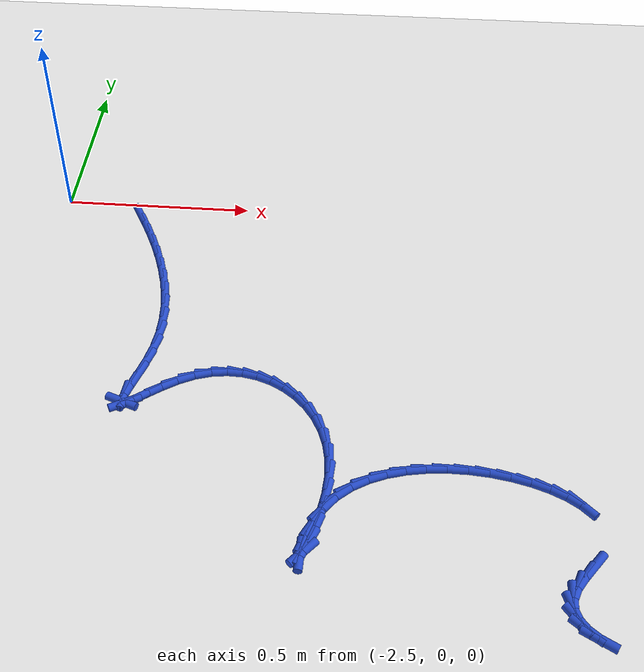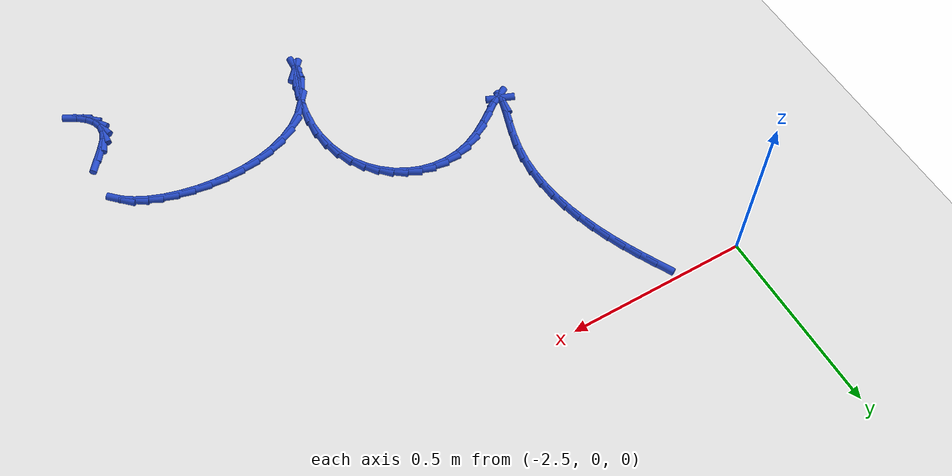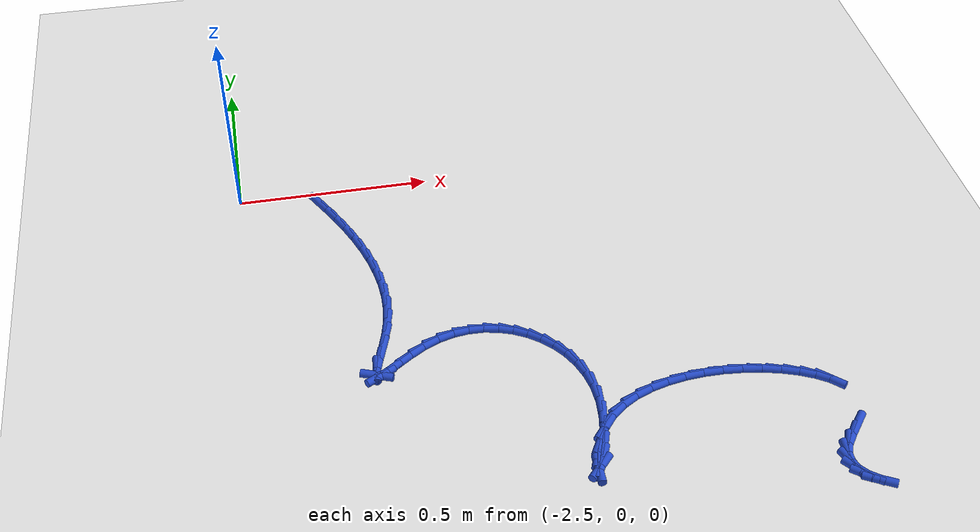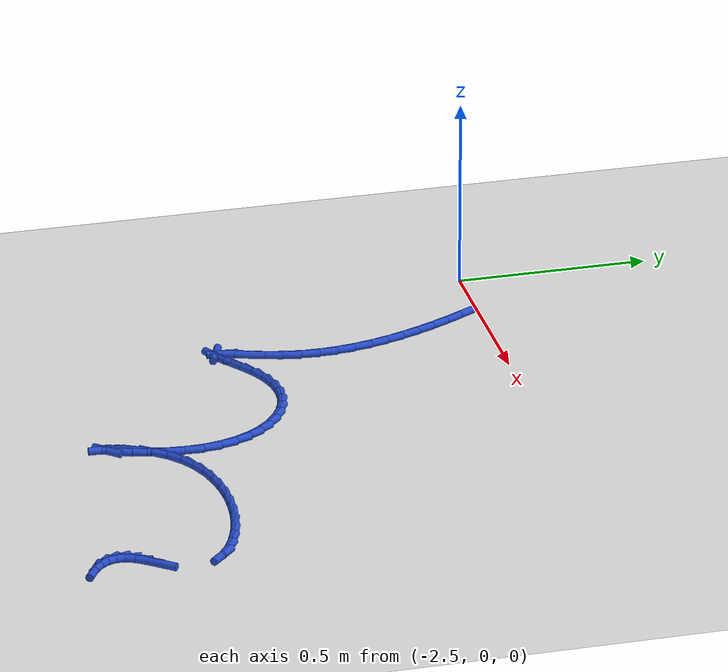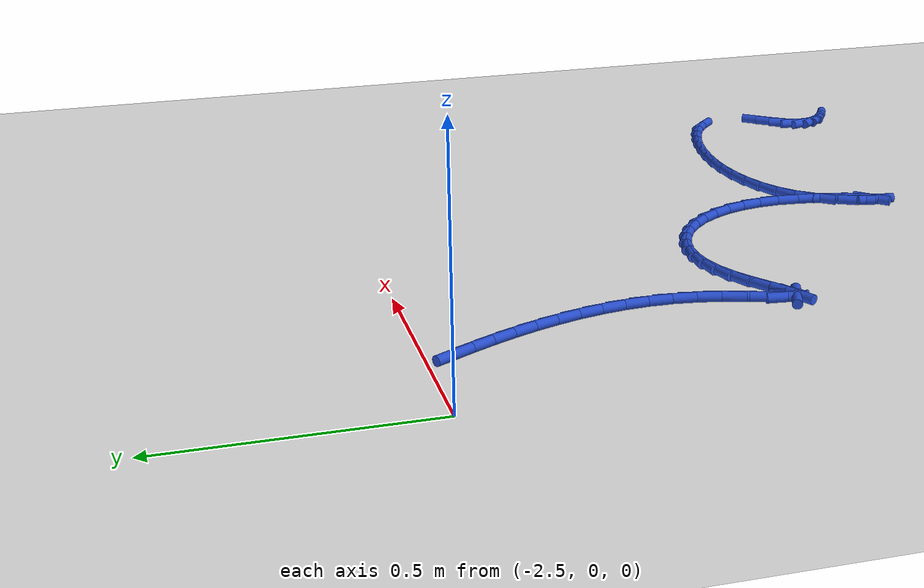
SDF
<sdf version="1.6">
 <world name="default">
  <model name="ground_plane">
   <static>1</static>
   <link name="link">
    <collision name="collision">
     <geometry><plane><normal>0 0 1</normal><size>100 100</size></plane></geometry>
     <surface><friction><ode><mu>100</mu><mu2>50</mu2></ode></friction></surface>
    </collision>
    <visual name="visual">
     <cast_shadows>0</cast_shadows>
     <geometry><plane><normal>0 0 1</normal><size>100 100</size></plane></geometry>
     <material>
      <script><uri>file://media/materials/scripts/gazebo.material</uri><name>Gazebo/WhiteGlow</name></script>
     </material>
    </visual>
   </link>
  </model>
  <model name="line">
   <link name="link_134">
    <pose>-2.2917231130700255 -0.04855741397646514 0.01 0 1.57 -1.0851510295384097</pose>
    <collision name="collision">
     <geometry><cylinder><radius>0.01</radius><length>0.08</length></cylinder></geometry>
    </collision>
    <visual name="visual">
     <material>
      <script><name>Gazebo/Blue</name><uri>file://media/materials/scripts/gazebo.material</uri></script>
     </material>
     <geometry><cylinder><radius>0.01</radius><length>0.08</length></cylinder></geometry>
    </visual>
   </link>
   <link name="link_135">
    <pose>-2.270010300967143 -0.08969516655271938 0.01 0 1.57 -1.1145237822553498</pose>
    <collision name="collision">
     <geometry><cylinder><radius>0.01</radius><length>0.08</length></cylinder></geometry>
    </collision>
    <visual name="visual">
     <material>
      <script><name>Gazebo/Blue</name><uri>file://media/materials/scripts/gazebo.material</uri></script>
     </material>
     <geometry><cylinder><radius>0.01</radius><length>0.08</length></cylinder></geometry>
    </visual>
   </link>
   <link name="link_136">
    <pose>-2.2492708828081667 -0.13195023926017302 0.01 0 1.57 -1.1495945796037097</pose>
    <collision name="collision">
     <geometry><cylinder><radius>0.01</radius><length>0.08</length></cylinder></geometry>
    </collision>
    <visual name="visual">
     <material>
      <script><name>Gazebo/Blue</name><uri>file://media/materials/scripts/gazebo.material</uri></script>
     </material>
     <geometry><cylinder><radius>0.01</radius><length>0.08</length></cylinder></geometry>
    </visual>
   </link>
   <link name="link_137">
    <pose>-2.2298988175978267 -0.1751900346401957 0.01 0 1.57 -1.1907986884473443</pose>
    <collision name="collision">
     <geometry><cylinder><radius>0.01</radius><length>0.08</length></cylinder></geometry>
    </collision>
    <visual name="visual">
     <material>
      <script><name>Gazebo/Blue</name><uri>file://media/materials/scripts/gazebo.material</uri></script>
     </material>
     <geometry><cylinder><radius>0.01</radius><length>0.08</length></cylinder></geometry>
    </visual>
   </link>
   <link name="link_138">
    <pose>-2.2122880643408496 -0.21928195523416177 0.01 0 1.57 -1.2386718678270994</pose>
    <collision name="collision">
     <geometry><cylinder><radius>0.01</radius><length>0.08</length></cylinder></geometry>
    </collision>
    <visual name="visual">
     <material>
      <script><name>Gazebo/Blue</name><uri>file://media/materials/scripts/gazebo.material</uri></script>
     </material>
     <geometry><cylinder><radius>0.01</radius><length>0.08</length></cylinder></geometry>
    </visual>
   </link>
   <link name="link_139">
    <pose>-2.196832582041966 -0.26409340358344024 0.01 0 1.57 -1.2938150297050173</pose>
    <collision name="collision">
     <geometry><cylinder><radius>0.01</radius><length>0.08</length></cylinder></geometry>
    </collision>
    <visual name="visual">
     <material>
      <script><name>Gazebo/Blue</name><uri>file://media/materials/scripts/gazebo.material</uri></script>
     </material>
     <geometry><cylinder><radius>0.01</radius><length>0.08</length></cylinder></geometry>
    </visual>
   </link>
   <link name="link_140">
    <pose>-2.183926329705902 -0.3094917822294041 0.01 0 1.57 -1.3568380491612104</pose>
    <collision name="collision">
     <geometry><cylinder><radius>0.01</radius><length>0.08</length></cylinder></geometry>
    </collision>
    <visual name="visual">
     <material>
      <script><name>Gazebo/Blue</name><uri>file://media/materials/scripts/gazebo.material</uri></script>
     </material>
     <geometry><cylinder><radius>0.01</radius><length>0.08</length></cylinder></geometry>
    </visual>
   </link>
   <link name="link_141">
    <pose>-2.17396326633739 -0.3553444937134266 0.01 0 1.57 -1.4282718271760149</pose>
    <collision name="collision">
     <geometry><cylinder><radius>0.01</radius><length>0.08</length></cylinder></geometry>
    </collision>
    <visual name="visual">
     <material>
      <script><name>Gazebo/Blue</name><uri>file://media/materials/scripts/gazebo.material</uri></script>
     </material>
     <geometry><cylinder><radius>0.01</radius><length>0.08</length></cylinder></geometry>
    </visual>
   </link>
   <link name="link_142">
    <pose>-2.1673373509411564 -0.4015189405768763 0.01 0 1.57 -1.508440158553396</pose>
    <collision name="collision">
     <geometry><cylinder><radius>0.01</radius><length>0.08</length></cylinder></geometry>
    </collision>
    <visual name="visual">
     <material>
      <script><name>Gazebo/Blue</name><uri>file://media/materials/scripts/gazebo.material</uri></script>
     </material>
     <geometry><cylinder><radius>0.01</radius><length>0.08</length></cylinder></geometry>
    </visual>
   </link>
   <link name="link_143">
    <pose>-2.1644425425219307 -0.447882525361128 0.01 0 1.57 1.5442998527689176</pose>
    <collision name="collision">
     <geometry><cylinder><radius>0.01</radius><length>0.08</length></cylinder></geometry>
    </collision>
    <visual name="visual">
     <material>
      <script><name>Gazebo/Blue</name><uri>file://media/materials/scripts/gazebo.material</uri></script>
     </material>
     <geometry><cylinder><radius>0.01</radius><length>0.08</length></cylinder></geometry>
    </visual>
   </link>
   <link name="link_144">
    <pose>-2.165672800084442 -0.4943026506075505 0.01 0 1.57 1.4473704320053755</pose>
    <collision name="collision">
     <geometry><cylinder><radius>0.01</radius><length>0.08</length></cylinder></geometry>
    </collision>
    <visual name="visual">
     <material>
      <script><name>Gazebo/Blue</name><uri>file://media/materials/scripts/gazebo.material</uri></script>
     </material>
     <geometry><cylinder><radius>0.01</radius><length>0.08</length></cylinder></geometry>
    </visual>
   </link>
   <link name="link_145">
    <pose>-2.171422082633418 -0.5406467188575181 0.01 0 1.57 1.349013122720016</pose>
    <collision name="collision">
     <geometry><cylinder><radius>0.01</radius><length>0.08</length></cylinder></geometry>
    </collision>
    <visual name="visual">
     <material>
      <script><name>Gazebo/Blue</name><uri>file://media/materials/scripts/gazebo.material</uri></script>
     </material>
     <geometry><cylinder><radius>0.01</radius><length>0.08</length></cylinder></geometry>
    </visual>
   </link>
   <link name="link_146">
    <pose>-2.18176702638688 -0.5865238176493436 0.01 0 1.57 1.282772311946496</pose>
    <collision name="collision">
     <geometry><cylinder><radius>0.01</radius><length>0.08</length></cylinder></geometry>
    </collision>
    <visual name="visual">
     <material>
      <script><name>Gazebo/Blue</name><uri>file://media/materials/scripts/gazebo.material</uri></script>
     </material>
     <geometry><cylinder><radius>0.01</radius><length>0.08</length></cylinder></geometry>
    </visual>
   </link>
   <link name="link_147">
    <pose>-2.1945706562289664 -0.6297410554564037 0.01 0 1.57 1.2574440509981948</pose>
    <collision name="collision">
     <geometry><cylinder><radius>0.01</radius><length>0.08</length></cylinder></geometry>
    </collision>
    <visual name="visual">
     <material>
      <script><name>Gazebo/Blue</name><uri>file://media/materials/scripts/gazebo.material</uri></script>
     </material>
     <geometry><cylinder><radius>0.01</radius><length>0.08</length></cylinder></geometry>
    </visual>
   </link>
   <link name="link_148">
    <pose>-2.2067531039974404 -0.6673379834559726 0.01 0 1.57 1.2865039683746942</pose>
    <collision name="collision">
     <geometry><cylinder><radius>0.01</radius><length>0.08</length></cylinder></geometry>
    </collision>
    <visual name="visual">
     <material>
      <script><name>Gazebo/Blue</name><uri>file://media/materials/scripts/gazebo.material</uri></script>
     </material>
     <geometry><cylinder><radius>0.01</radius><length>0.08</length></cylinder></geometry>
    </visual>
   </link>
   <link name="link_149">
    <pose>-2.2152310130240718 -0.696351313024739 0.01 0 1.57 1.4743388461153744</pose>
    <collision name="collision">
     <geometry><cylinder><radius>0.01</radius><length>0.08</length></cylinder></geometry>
    </collision>
    <visual name="visual">
     <material>
      <script><name>Gazebo/Blue</name><uri>file://media/materials/scripts/gazebo.material</uri></script>
     </material>
     <geometry><cylinder><radius>0.01</radius><length>0.08</length></cylinder></geometry>
    </visual>
   </link>
   <link name="link_150">
    <pose>-2.2169210266406236 -0.713817755539385 0.01 0 1.57 -0.36827275962958833</pose>
    <collision name="collision">
     <geometry><cylinder><radius>0.01</radius><length>0.08</length></cylinder></geometry>
    </collision>
    <visual name="visual">
     <material>
      <script><name>Gazebo/Blue</name><uri>file://media/materials/scripts/gazebo.material</uri></script>
     </material>
     <geometry><cylinder><radius>0.01</radius><length>0.08</length></cylinder></geometry>
    </visual>
   </link>
   <link name="link_151">
    <pose>-2.208849146815495 -0.7169325115986326 0.01 0 1.57 0.5166902553675131</pose>
    <collision name="collision">
     <geometry><cylinder><radius>0.01</radius><length>0.08</length></cylinder></geometry>
    </collision>
    <visual name="visual">
     <material>
      <script><name>Gazebo/Blue</name><uri>file://media/materials/scripts/gazebo.material</uri></script>
     </material>
     <geometry><cylinder><radius>0.01</radius><length>0.08</length></cylinder></geometry>
    </visual>
   </link>
   <link name="link_152">
    <pose>-2.1905601619269266 -0.7065411610567033 0.01 0 1.57 0.63296798541804</pose>
    <collision name="collision">
     <geometry><cylinder><radius>0.01</radius><length>0.08</length></cylinder></geometry>
    </collision>
    <visual name="visual">
     <material>
      <script><name>Gazebo/Blue</name><uri>file://media/materials/scripts/gazebo.material</uri></script>
     </material>
     <geometry><cylinder><radius>0.01</radius><length>0.08</length></cylinder></geometry>
    </visual>
   </link>
   <link name="link_153">
    <pose>-2.164119613758411 -0.6871425137133256 0.01 0 1.57 0.6322620412582841</pose>
    <collision name="collision">
     <geometry><cylinder><radius>0.01</radius><length>0.08</length></cylinder></geometry>
    </collision>
    <visual name="visual">
     <material>
      <script><name>Gazebo/Blue</name><uri>file://media/materials/scripts/gazebo.material</uri></script>
     </material>
     <geometry><cylinder><radius>0.01</radius><length>0.08</length></cylinder></geometry>
    </visual>
   </link>
   <link name="link_154">
    <pose>-2.1317027961292316 -0.6633944387283728 0.01 0 1.57 0.5743941713552768</pose>
    <collision name="collision">
     <geometry><cylinder><radius>0.01</radius><length>0.08</length></cylinder></geometry>
    </collision>
    <visual name="visual">
     <material>
      <script><name>Gazebo/Blue</name><uri>file://media/materials/scripts/gazebo.material</uri></script>
     </material>
     <geometry><cylinder><radius>0.01</radius><length>0.08</length></cylinder></geometry>
    </visual>
   </link>
   <link name="link_155">
    <pose>-2.095485002858673 -0.6399548052617205 0.01 0 1.57 0.45626950187064436</pose>
    <collision name="collision">
     <geometry><cylinder><radius>0.01</radius><length>0.08</length></cylinder></geometry>
    </collision>
    <visual name="visual">
     <material>
      <script><name>Gazebo/Blue</name><uri>file://media/materials/scripts/gazebo.material</uri></script>
     </material>
     <geometry><cylinder><radius>0.01</radius><length>0.08</length></cylinder></geometry>
    </visual>
   </link>
   <link name="link_156">
    <pose>-2.05760150998905 -0.6213611665415817 0.01 0 1.57 0.2965109041703489</pose>
    <collision name="collision">
     <geometry><cylinder><radius>0.01</radius><length>0.08</length></cylinder></geometry>
    </collision>
    <visual name="visual">
     <material>
      <script><name>Gazebo/Blue</name><uri>file://media/materials/scripts/gazebo.material</uri></script>
     </material>
     <geometry><cylinder><radius>0.01</radius><length>0.08</length></cylinder></geometry>
    </visual>
   </link>
   <link name="link_157">
    <pose>-2.0193655000133592 -0.6096794004858552 0.01 0 1.57 0.13123432530059786</pose>
    <collision name="collision">
     <geometry><cylinder><radius>0.01</radius><length>0.08</length></cylinder></geometry>
    </collision>
    <visual name="visual">
     <material>
      <script><name>Gazebo/Blue</name><uri>file://media/materials/scripts/gazebo.material</uri></script>
     </material>
     <geometry><cylinder><radius>0.01</radius><length>0.08</length></cylinder></geometry>
    </visual>
   </link>
   <link name="link_158">
    <pose>-1.9813192339843706 -0.6046575618260739 0.01 0 1.57 -0.03470747744744785</pose>
    <collision name="collision">
     <geometry><cylinder><radius>0.01</radius><length>0.08</length></cylinder></geometry>
    </collision>
    <visual name="visual">
     <material>
      <script><name>Gazebo/Blue</name><uri>file://media/materials/scripts/gazebo.material</uri></script>
     </material>
     <geometry><cylinder><radius>0.01</radius><length>0.08</length></cylinder></geometry>
    </visual>
   </link>
   <link name="link_159">
    <pose>-1.9439752028528825 -0.6059541996333702 0.01 0 1.57 -0.19866743657453612</pose>
    <collision name="collision">
     <geometry><cylinder><radius>0.01</radius><length>0.08</length></cylinder></geometry>
    </collision>
    <visual name="visual">
     <material>
      <script><name>Gazebo/Blue</name><uri>file://media/materials/scripts/gazebo.material</uri></script>
     </material>
     <geometry><cylinder><radius>0.01</radius><length>0.08</length></cylinder></geometry>
    </visual>
   </link>
   <link name="link_160">
    <pose>-1.9078458975696888 -0.6132278629788751 0.01 0 1.57 -0.35898611663852276</pose>
    <collision name="collision">
     <geometry><cylinder><radius>0.01</radius><length>0.08</length></cylinder></geometry>
    </collision>
    <visual name="visual">
     <material>
      <script><name>Gazebo/Blue</name><uri>file://media/materials/scripts/gazebo.material</uri></script>
     </material>
     <geometry><cylinder><radius>0.01</radius><length>0.08</length></cylinder></geometry>
    </visual>
   </link>
   <link name="link_161">
    <pose>-1.8734438090855834 -0.6261371009337207 0.01 0 1.57 -0.5150313832143933</pose>
    <collision name="collision">
     <geometry><cylinder><radius>0.01</radius><length>0.08</length></cylinder></geometry>
    </collision>
    <visual name="visual">
     <material>
      <script><name>Gazebo/Blue</name><uri>file://media/materials/scripts/gazebo.material</uri></script>
     </material>
     <geometry><cylinder><radius>0.01</radius><length>0.08</length></cylinder></geometry>
    </visual>
   </link>
   <link name="link_162">
    <pose>-1.8412814283513634 -0.6443404625690379 0.01 0 1.57 -0.6669782700332839</pose>
    <collision name="collision">
     <geometry><cylinder><radius>0.01</radius><length>0.08</length></cylinder></geometry>
    </collision>
    <visual name="visual">
     <material>
      <script><name>Gazebo/Blue</name><uri>file://media/materials/scripts/gazebo.material</uri></script>
     </material>
     <geometry><cylinder><radius>0.01</radius><length>0.08</length></cylinder></geometry>
    </visual>
   </link>
   <link name="link_163">
    <pose>-1.811871246317823 -0.6674964969559596 0.01 0 1.57 -0.8154703627694536</pose>
    <collision name="collision">
     <geometry><cylinder><radius>0.01</radius><length>0.08</length></cylinder></geometry>
    </collision>
    <visual name="visual">
     <material>
      <script><name>Gazebo/Blue</name><uri>file://media/materials/scripts/gazebo.material</uri></script>
     </material>
     <geometry><cylinder><radius>0.01</radius><length>0.08</length></cylinder></geometry>
    </visual>
   </link>
   <link name="link_164">
    <pose>-1.785725753935759 -0.6952637531656158 0.01 0 1.57 -0.9612781903006515</pose>
    <collision name="collision">
     <geometry><cylinder><radius>0.01</radius><length>0.08</length></cylinder></geometry>
    </collision>
    <visual name="visual">
     <material>
      <script><name>Gazebo/Blue</name><uri>file://media/materials/scripts/gazebo.material</uri></script>
     </material>
     <geometry><cylinder><radius>0.01</radius><length>0.08</length></cylinder></geometry>
    </visual>
   </link>
   <link name="link_165">
    <pose>-1.7633574421559643 -0.72730078026914 0.01 0 1.57 -1.105016349019414</pose>
    <collision name="collision">
     <geometry><cylinder><radius>0.01</radius><length>0.08</length></cylinder></geometry>
    </collision>
    <visual name="visual">
     <material>
      <script><name>Gazebo/Blue</name><uri>file://media/materials/scripts/gazebo.material</uri></script>
     </material>
     <geometry><cylinder><radius>0.01</radius><length>0.08</length></cylinder></geometry>
    </visual>
   </link>
   <link name="link_166">
    <pose>-1.7452788019292367 -0.7632661273376617 0.01 0 1.57 -1.2469445817094205</pose>
    <collision name="collision">
     <geometry><cylinder><radius>0.01</radius><length>0.08</length></cylinder></geometry>
    </collision>
    <visual name="visual">
     <material>
      <script><name>Gazebo/Blue</name><uri>file://media/materials/scripts/gazebo.material</uri></script>
     </material>
     <geometry><cylinder><radius>0.01</radius><length>0.08</length></cylinder></geometry>
    </visual>
   </link>
   <link name="link_167">
    <pose>-1.7320023242063693 -0.802818343442315 0.01 0 1.57 -1.386864755891693</pose>
    <collision name="collision">
     <geometry><cylinder><radius>0.01</radius><length>0.08</length></cylinder></geometry>
    </collision>
    <visual name="visual">
     <material>
      <script><name>Gazebo/Blue</name><uri>file://media/materials/scripts/gazebo.material</uri></script>
     </material>
     <geometry><cylinder><radius>0.01</radius><length>0.08</length></cylinder></geometry>
    </visual>
   </link>
   <link name="link_168">
    <pose>-1.7240404999381593 -0.845615977654229 0.01 0 1.57 -1.5241211690486771</pose>
    <collision name="collision">
     <geometry><cylinder><radius>0.01</radius><length>0.08</length></cylinder></geometry>
    </collision>
    <visual name="visual">
     <material>
      <script><name>Gazebo/Blue</name><uri>file://media/materials/scripts/gazebo.material</uri></script>
     </material>
     <geometry><cylinder><radius>0.01</radius><length>0.08</length></cylinder></geometry>
    </visual>
   </link>
   <link name="link_169">
    <pose>-1.7219058200754005 -0.8913175790445378 0.01 0 1.57 1.4893577802212175</pose>
    <collision name="collision">
     <geometry><cylinder><radius>0.01</radius><length>0.08</length></cylinder></geometry>
    </collision>
    <visual name="visual">
     <material>
      <script><name>Gazebo/Blue</name><uri>file://media/materials/scripts/gazebo.material</uri></script>
     </material>
     <geometry><cylinder><radius>0.01</radius><length>0.08</length></cylinder></geometry>
    </visual>
   </link>
   <link name="link_170">
    <pose>-1.7258134139592627 -0.9391935730279847 0.01 0 1.57 1.3932487838001058</pose>
    <collision name="collision">
     <geometry><cylinder><radius>0.01</radius><length>0.08</length></cylinder></geometry>
    </collision>
    <visual name="visual">
     <material>
      <script><name>Gazebo/Blue</name><uri>file://media/materials/scripts/gazebo.material</uri></script>
     </material>
     <geometry><cylinder><radius>0.01</radius><length>0.08</length></cylinder></geometry>
    </visual>
   </link>
   <link name="link_171">
    <pose>-1.734261215187207 -0.9862730590740573 0.01 0 1.57 1.3204322413091465</pose>
    <collision name="collision">
     <geometry><cylinder><radius>0.01</radius><length>0.08</length></cylinder></geometry>
    </collision>
    <visual name="visual">
     <material>
      <script><name>Gazebo/Blue</name><uri>file://media/materials/scripts/gazebo.material</uri></script>
     </material>
     <geometry><cylinder><radius>0.01</radius><length>0.08</length></cylinder></geometry>
    </visual>
   </link>
   <link name="link_172">
    <pose>-1.745132109785104 -1.0287823614969804 0.01 0 1.57 1.2546422052830335</pose>
    <collision name="collision">
     <geometry><cylinder><radius>0.01</radius><length>0.08</length></cylinder></geometry>
    </collision>
    <visual name="visual">
     <material>
      <script><name>Gazebo/Blue</name><uri>file://media/materials/scripts/gazebo.material</uri></script>
     </material>
     <geometry><cylinder><radius>0.01</radius><length>0.08</length></cylinder></geometry>
    </visual>
   </link>
   <link name="link_173">
    <pose>-1.7563081999589123 -1.062946781550028 0.01 0 1.57 1.1691434987322982</pose>
    <collision name="collision">
     <geometry><cylinder><radius>0.01</radius><length>0.08</length></cylinder></geometry>
    </collision>
    <visual name="visual">
     <material>
      <script><name>Gazebo/Blue</name><uri>file://media/materials/scripts/gazebo.material</uri></script>
     </material>
     <geometry><cylinder><radius>0.01</radius><length>0.08</length></cylinder></geometry>
    </visual>
   </link>
   <link name="link_174">
    <pose>-1.7656715879145932 -1.0849916204864793 0.01 0 1.57 0.8472848141397241</pose>
    <collision name="collision">
     <geometry><cylinder><radius>0.01</radius><length>0.08</length></cylinder></geometry>
    </collision>
    <visual name="visual">
     <material>
      <script><name>Gazebo/Blue</name><uri>file://media/materials/scripts/gazebo.material</uri></script>
     </material>
     <geometry><cylinder><radius>0.01</radius><length>0.08</length></cylinder></geometry>
    </visual>
   </link>
   <link name="link_175">
    <pose>-1.7711043758581055 -1.09114217955961 0.01 0 1.57 1.5348539324616026</pose>
    <collision name="collision">
     <geometry><cylinder><radius>0.01</radius><length>0.08</length></cylinder></geometry>
    </collision>
    <visual name="visual">
     <material>
      <script><name>Gazebo/Blue</name><uri>file://media/materials/scripts/gazebo.material</uri></script>
     </material>
     <geometry><cylinder><radius>0.01</radius><length>0.08</length></cylinder></geometry>
    </visual>
   </link>
   <link name="link_176">
    <pose>-1.770646866232424 -1.0784186922946664 0.01 0 1.57 1.3258972960798805</pose>
    <collision name="collision">
     <geometry><cylinder><radius>0.01</radius><length>0.08</length></cylinder></geometry>
    </collision>
    <visual name="visual">
     <material>
      <script><name>Gazebo/Blue</name><uri>file://media/materials/scripts/gazebo.material</uri></script>
     </material>
     <geometry><cylinder><radius>0.01</radius><length>0.08</length></cylinder></geometry>
    </visual>
   </link>
   <link name="link_177">
    <pose>-1.7636447236815505 -1.0504006399133072 0.01 0 1.57 1.2151575115845004</pose>
    <collision name="collision">
     <geometry><cylinder><radius>0.01</radius><length>0.08</length></cylinder></geometry>
    </collision>
    <visual name="visual">
     <material>
      <script><name>Gazebo/Blue</name><uri>file://media/materials/scripts/gazebo.material</uri></script>
     </material>
     <geometry><cylinder><radius>0.01</radius><length>0.08</length></cylinder></geometry>
    </visual>
   </link>
   <link name="link_178">
    <pose>-1.7500865614818983 -1.0138982233046814 0.01 0 1.57 1.0854970493937754</pose>
    <collision name="collision">
     <geometry><cylinder><radius>0.01</radius><length>0.08</length></cylinder></geometry>
    </collision>
    <visual name="visual">
     <material>
      <script><name>Gazebo/Blue</name><uri>file://media/materials/scripts/gazebo.material</uri></script>
     </material>
     <geometry><cylinder><radius>0.01</radius><length>0.08</length></cylinder></geometry>
    </visual>
   </link>
   <link name="link_179">
    <pose>-1.7299654947904672 -0.9757442646272115 0.01 0 1.57 0.9040457312439301</pose>
    <collision name="collision">
     <geometry><cylinder><radius>0.01</radius><length>0.08</length></cylinder></geometry>
    </collision>
    <visual name="visual">
     <material>
      <script><name>Gazebo/Blue</name><uri>file://media/materials/scripts/gazebo.material</uri></script>
     </material>
     <geometry><cylinder><radius>0.01</radius><length>0.08</length></cylinder></geometry>
    </visual>
   </link>
   <link name="link_180">
    <pose>-1.7033814952614539 -0.9419644475816482 0.01 0 1.57 0.7141605820463385</pose>
    <collision name="collision">
     <geometry><cylinder><radius>0.01</radius><length>0.08</length></cylinder></geometry>
    </collision>
    <visual name="visual">
     <material>
      <script><name>Gazebo/Blue</name><uri>file://media/materials/scripts/gazebo.material</uri></script>
     </material>
     <geometry><cylinder><radius>0.01</radius><length>0.08</length></cylinder></geometry>
    </visual>
   </link>
   <link name="link_181">
    <pose>-1.6710494879087285 -0.9139394177169528 0.01 0 1.57 0.5455619518383719</pose>
    <collision name="collision">
     <geometry><cylinder><radius>0.01</radius><length>0.08</length></cylinder></geometry>
    </collision>
    <visual name="visual">
     <material>
      <script><name>Gazebo/Blue</name><uri>file://media/materials/scripts/gazebo.material</uri></script>
     </material>
     <geometry><cylinder><radius>0.01</radius><length>0.08</length></cylinder></geometry>
    </visual>
   </link>
   <link name="link_182">
    <pose>-1.6339039419523136 -0.8913914977230405 0.01 0 1.57 0.4001185907667569</pose>
    <collision name="collision">
     <geometry><cylinder><radius>0.01</radius><length>0.08</length></cylinder></geometry>
    </collision>
    <visual name="visual">
     <material>
      <script><name>Gazebo/Blue</name><uri>file://media/materials/scripts/gazebo.material</uri></script>
     </material>
     <geometry><cylinder><radius>0.01</radius><length>0.08</length></cylinder></geometry>
    </visual>
   </link>
   <link name="link_183">
    <pose>-1.5928795995200928 -0.8740409488856313 0.01 0 1.57 0.2755748995381719</pose>
    <collision name="collision">
     <geometry><cylinder><radius>0.01</radius><length>0.08</length></cylinder></geometry>
    </collision>
    <visual name="visual">
     <material>
      <script><name>Gazebo/Blue</name><uri>file://media/materials/scripts/gazebo.material</uri></script>
     </material>
     <geometry><cylinder><radius>0.01</radius><length>0.08</length></cylinder></geometry>
    </visual>
   </link>
   <link name="link_184">
    <pose>-1.5489112027399543 -0.8616080324904475 0.01 0 1.57 0.1679422379287937</pose>
    <collision name="collision">
     <geometry><cylinder><radius>0.01</radius><length>0.08</length></cylinder></geometry>
    </collision>
    <visual name="visual">
     <material>
      <script><name>Gazebo/Blue</name><uri>file://media/materials/scripts/gazebo.material</uri></script>
     </material>
     <geometry><cylinder><radius>0.01</radius><length>0.08</length></cylinder></geometry>
    </visual>
   </link>
   <link name="link_185">
    <pose>-1.5029334937397811 -0.8538130098232084 0.01 0 1.57 0.07291410524097197</pose>
    <collision name="collision">
     <geometry><cylinder><radius>0.01</radius><length>0.08</length></cylinder></geometry>
    </collision>
    <visual name="visual">
     <material>
      <script><name>Gazebo/Blue</name><uri>file://media/materials/scripts/gazebo.material</uri></script>
     </material>
     <geometry><cylinder><radius>0.01</radius><length>0.08</length></cylinder></geometry>
    </visual>
   </link>
   <link name="link_186">
    <pose>-1.4558812146474622 -0.8503761421696354 0.01 0 1.57 -0.013593568270802088</pose>
    <collision name="collision">
     <geometry><cylinder><radius>0.01</radius><length>0.08</length></cylinder></geometry>
    </collision>
    <visual name="visual">
     <material>
      <script><name>Gazebo/Blue</name><uri>file://media/materials/scripts/gazebo.material</uri></script>
     </material>
     <geometry><cylinder><radius>0.01</radius><length>0.08</length></cylinder></geometry>
    </visual>
   </link>
   <link name="link_187">
    <pose>-1.4086891075908792 -0.8510176908154488 0.01 0 1.57 -0.09540975677233333</pose>
    <collision name="collision">
     <geometry><cylinder><radius>0.01</radius><length>0.08</length></cylinder></geometry>
    </collision>
    <visual name="visual">
     <material>
      <script><name>Gazebo/Blue</name><uri>file://media/materials/scripts/gazebo.material</uri></script>
     </material>
     <geometry><cylinder><radius>0.01</radius><length>0.08</length></cylinder></geometry>
    </visual>
   </link>
   <link name="link_188">
    <pose>-1.3622919146979213 -0.8554579170463692 0.01 0 1.57 -0.17633608192213598</pose>
    <collision name="collision">
     <geometry><cylinder><radius>0.01</radius><length>0.08</length></cylinder></geometry>
    </collision>
    <visual name="visual">
     <material>
      <script><name>Gazebo/Blue</name><uri>file://media/materials/scripts/gazebo.material</uri></script>
     </material>
     <geometry><cylinder><radius>0.01</radius><length>0.08</length></cylinder></geometry>
    </visual>
   </link>
   <link name="link_189">
    <pose>-1.3176243780964716 -0.8634170821481174 0.01 0 1.57 -0.26054745454087386</pose>
    <collision name="collision">
     <geometry><cylinder><radius>0.01</radius><length>0.08</length></cylinder></geometry>
    </collision>
    <visual name="visual">
     <material>
      <script><name>Gazebo/Blue</name><uri>file://media/materials/scripts/gazebo.material</uri></script>
     </material>
     <geometry><cylinder><radius>0.01</radius><length>0.08</length></cylinder></geometry>
    </visual>
   </link>
   <link name="link_190">
    <pose>-1.2756212399144176 -0.8746154474064136 0.01 0 1.57 -0.35319638183264046</pose>
    <collision name="collision">
     <geometry><cylinder><radius>0.01</radius><length>0.08</length></cylinder></geometry>
    </collision>
    <visual name="visual">
     <material>
      <script><name>Gazebo/Blue</name><uri>file://media/materials/scripts/gazebo.material</uri></script>
     </material>
     <geometry><cylinder><radius>0.01</radius><length>0.08</length></cylinder></geometry>
    </visual>
   </link>
   <link name="link_191">
    <pose>-1.2372172422796428 -0.8887732741069793 0.01 0 1.57 -0.4613418525905414</pose>
    <collision name="collision">
     <geometry><cylinder><radius>0.01</radius><length>0.08</length></cylinder></geometry>
    </collision>
    <visual name="visual">
     <material>
      <script><name>Gazebo/Blue</name><uri>file://media/materials/scripts/gazebo.material</uri></script>
     </material>
     <geometry><cylinder><radius>0.01</radius><length>0.08</length></cylinder></geometry>
    </visual>
   </link>
   <link name="link_192">
    <pose>-1.203347127320035 -0.9056108235355337 0.01 0 1.57 -0.5953571234054772</pose>
    <collision name="collision">
     <geometry><cylinder><radius>0.01</radius><length>0.08</length></cylinder></geometry>
    </collision>
    <visual name="visual">
     <material>
      <script><name>Gazebo/Blue</name><uri>file://media/materials/scripts/gazebo.material</uri></script>
     </material>
     <geometry><cylinder><radius>0.01</radius><length>0.08</length></cylinder></geometry>
    </visual>
   </link>
   <link name="link_193">
    <pose>-1.1749456371634786 -0.9248483569777985 0.01 0 1.57 -0.7706297489520141</pose>
    <collision name="collision">
     <geometry><cylinder><radius>0.01</radius><length>0.08</length></cylinder></geometry>
    </collision>
    <visual name="visual">
     <material>
      <script><name>Gazebo/Blue</name><uri>file://media/materials/scripts/gazebo.material</uri></script>
     </material>
     <geometry><cylinder><radius>0.01</radius><length>0.08</length></cylinder></geometry>
    </visual>
   </link>
   <link name="link_199">
    <pose>-1.1668238058016251 -1.074700056557115 0.01 0 1.57 0.9087594915650966</pose>
    <collision name="collision">
     <geometry><cylinder><radius>0.01</radius><length>0.08</length></cylinder></geometry>
    </collision>
    <visual name="visual">
     <material>
      <script><name>Gazebo/Blue</name><uri>file://media/materials/scripts/gazebo.material</uri></script>
     </material>
     <geometry><cylinder><radius>0.01</radius><length>0.08</length></cylinder></geometry>
    </visual>
   </link>
   <link name="link_200">
    <pose>-1.1880815077142988 -1.1019754182928132 0.01 0 1.57 0.9743192972145639</pose>
    <collision name="collision">
     <geometry><cylinder><radius>0.01</radius><length>0.08</length></cylinder></geometry>
    </collision>
    <visual name="visual">
     <material>
      <script><name>Gazebo/Blue</name><uri>file://media/materials/scripts/gazebo.material</uri></script>
     </material>
     <geometry><cylinder><radius>0.01</radius><length>0.08</length></cylinder></geometry>
    </visual>
   </link>
   <link name="link_201">
    <pose>-1.2060169720958396 -1.1283908272774874 0.01 0 1.57 1.1908419114919466</pose>
    <collision name="collision">
     <geometry><cylinder><radius>0.01</radius><length>0.08</length></cylinder></geometry>
    </collision>
    <visual name="visual">
     <material>
      <script><name>Gazebo/Blue</name><uri>file://media/materials/scripts/gazebo.material</uri></script>
     </material>
     <geometry><cylinder><radius>0.01</radius><length>0.08</length></cylinder></geometry>
    </visual>
   </link>
   <link name="link_202">
    <pose>-1.2159772220787763 -1.1533313654779678 0.01 0 1.57 1.5287507239251414</pose>
    <collision name="collision">
     <geometry><cylinder><radius>0.01</radius><length>0.08</length></cylinder></geometry>
    </collision>
    <visual name="visual">
     <material>
      <script><name>Gazebo/Blue</name><uri>file://media/materials/scripts/gazebo.material</uri></script>
     </material>
     <geometry><cylinder><radius>0.01</radius><length>0.08</length></cylinder></geometry>
    </visual>
   </link>
   <link name="link_203">
    <pose>-1.2169536063836075 -1.1765397109180125 0.01 0 1.57 -1.2442249280385178</pose>
    <collision name="collision">
     <geometry><cylinder><radius>0.01</radius><length>0.08</length></cylinder></geometry>
    </collision>
    <visual name="visual">
     <material>
      <script><name>Gazebo/Blue</name><uri>file://media/materials/scripts/gazebo.material</uri></script>
     </material>
     <geometry><cylinder><radius>0.01</radius><length>0.08</length></cylinder></geometry>
    </visual>
   </link>
   <link name="link_204">
    <pose>-1.2097079786611065 -1.1979322707700437 0.01 0 1.57 -0.9248935566585796</pose>
    <collision name="collision">
     <geometry><cylinder><radius>0.01</radius><length>0.08</length></cylinder></geometry>
    </collision>
    <visual name="visual">
     <material>
      <script><name>Gazebo/Blue</name><uri>file://media/materials/scripts/gazebo.material</uri></script>
     </material>
     <geometry><cylinder><radius>0.01</radius><length>0.08</length></cylinder></geometry>
    </visual>
   </link>
   <link name="link_205">
    <pose>-1.1950139414420073 -1.2174266050543952 0.01 0 1.57 -0.6865718204395616</pose>
    <collision name="collision">
     <geometry><cylinder><radius>0.01</radius><length>0.08</length></cylinder></geometry>
    </collision>
    <visual name="visual">
     <material>
      <script><name>Gazebo/Blue</name><uri>file://media/materials/scripts/gazebo.material</uri></script>
     </material>
     <geometry><cylinder><radius>0.01</radius><length>0.08</length></cylinder></geometry>
    </visual>
   </link>
   <link name="link_206">
    <pose>-1.1736450972570436 -1.2349402737913995 0.01 0 1.57 -0.5154806017342157</pose>
    <collision name="collision">
     <geometry><cylinder><radius>0.01</radius><length>0.08</length></cylinder></geometry>
    </collision>
    <visual name="visual">
     <material>
      <script><name>Gazebo/Blue</name><uri>file://media/materials/scripts/gazebo.material</uri></script>
     </material>
     <geometry><cylinder><radius>0.01</radius><length>0.08</length></cylinder></geometry>
    </visual>
   </link>
  </model>
 </world>
</sdf>
